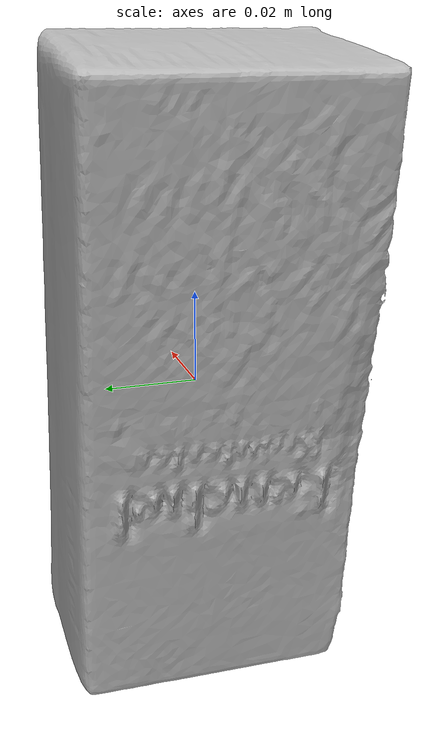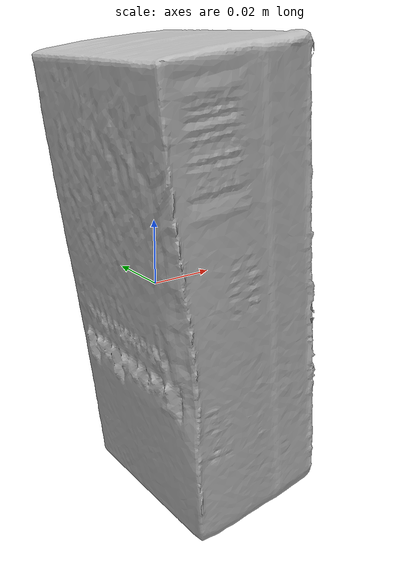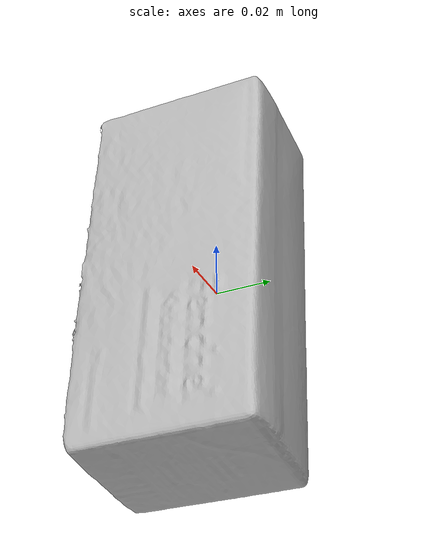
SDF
<?xml version='1.0'?>
<sdf version="1.4">
  <model name="FennelTea">
    <static>false</static>
    <link name="link">
      <inertial>
        <pose>0.0085617847224157 -0.003534738749157608 0.0001584806865951655 0.014721969723425479 -0.11709213314026302 0.01236579093728431</pose>
        <mass>0.04458243386360388</mass>
        <inertia>
          <ixx>8.925318429861532e-05</ixx>
          <ixy>-2.84574005924028e-21</ixy>
          <ixz>-6.4372942627103754e-21</ixz>
          <iyy>8.219261413353023e-05</iyy>
          <iyz>3.229108381504524e-20</iyz>
          <izz>2.414794586030786e-05</izz>
        </inertia>
      </inertial>
      <collision name="collision">
        <geometry>
          <mesh>
            <!-- Use a downsampled mesh for collisions -->
            <uri>model:///FennelTea/FennelTea_250_collision.obj</uri>
	        </mesh>
        </geometry>
        <surface>
      </surface>
      </collision>
      <visual name="visual">
        <geometry>
          <mesh>
            <uri>model:///FennelTea/FennelTea_25k_tex.obj</uri>
	        </mesh>
        </geometry>
        <material>
          <script>
            <uri>model:///FennelTea/FennelTea.material</uri>
            <name>FennelTea</name>
          </script>
        </material>
      </visual>
    </link>
  </model>
</sdf>
